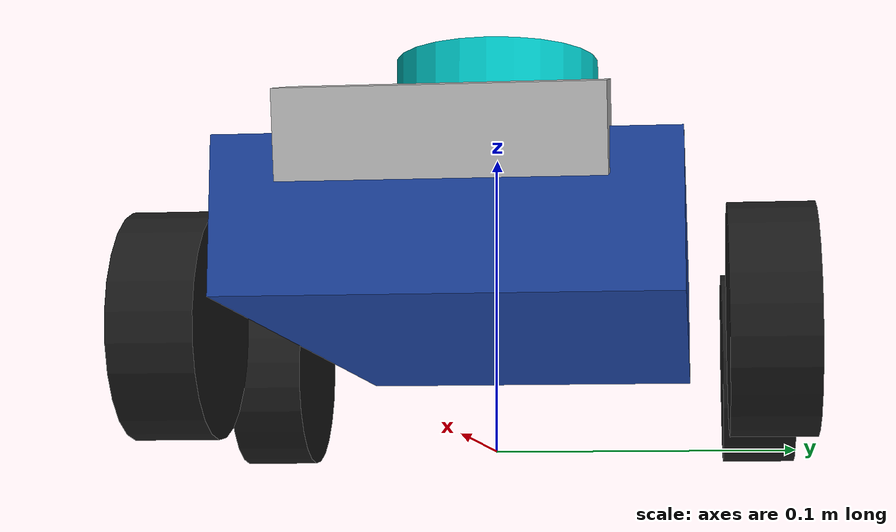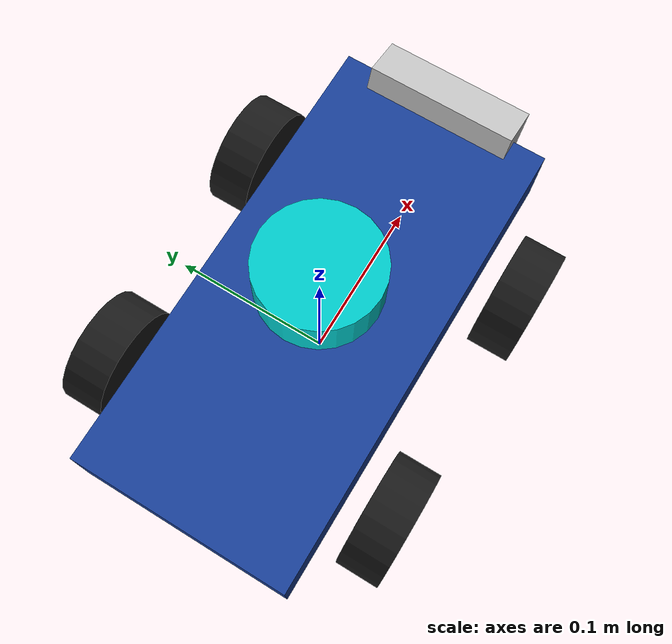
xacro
<?xml version="1.0"?>
<robot name="ackermann_car" xmlns:xacro="http://www.ros.org/wiki/xacro">

  <!-- ==================== PARAMETERS ==================== -->
  <xacro:property name="wheelbase" value="0.15"/>
  <xacro:property name="track_width" value="0.18"/>
  <xacro:property name="wheel_radius" value="0.035"/>
  <xacro:property name="wheel_width" value="0.026"/>
  <xacro:property name="chassis_length" value="0.28"/>
  <xacro:property name="chassis_width" value="0.13"/>
  <xacro:property name="chassis_height" value="0.045"/>
  <xacro:property name="chassis_mass" value="1.8"/>
  <xacro:property name="wheel_mass" value="0.1"/>
  <xacro:property name="max_steer" value="0.785398"/> <!-- 45 degrees -->

  <!-- ==================== BASE FOOTPRINT ==================== -->
  <link name="base_footprint"/>

  <joint name="base_footprint_joint" type="fixed">
    <parent link="base_footprint"/>
    <child link="base_link"/>
    <origin xyz="0 0 ${wheel_radius}" rpy="0 0 0"/>
  </joint>

  <!-- ==================== BASE LINK (CHASSIS) ==================== -->
  <link name="base_link">
    <visual>
      <origin xyz="0 0 ${chassis_height/2}" rpy="0 0 0"/>
      <geometry>
        <box size="${chassis_length} ${chassis_width} ${chassis_height}"/>
      </geometry>
      <material name="dark_blue">
        <color rgba="0.1 0.25 0.6 1.0"/>
      </material>
    </visual>
    <collision>
      <origin xyz="0 0 ${chassis_height/2}" rpy="0 0 0"/>
      <geometry>
        <box size="${chassis_length} ${chassis_width} ${chassis_height}"/>
      </geometry>
    </collision>
    <inertial>
      <origin xyz="0 0 ${chassis_height/2}" rpy="0 0 0"/>
      <mass value="${chassis_mass}"/>
      <inertia
        ixx="${(1/12) * chassis_mass * (chassis_width*chassis_width + chassis_height*chassis_height)}"
        ixy="0" ixz="0"
        iyy="${(1/12) * chassis_mass * (chassis_length*chassis_length + chassis_height*chassis_height)}"
        iyz="0"
        izz="${(1/12) * chassis_mass * (chassis_length*chassis_length + chassis_width*chassis_width)}"/>
    </inertial>
  </link>

  <!-- ==================== FRONT STEERING JOINTS & LINKS ==================== -->
  <!-- FRONT LEFT STEERING -->
  <link name="front_left_wheel_steering_link">
    <inertial>
      <origin xyz="0 0 0" rpy="0 0 0"/>
      <mass value="0.05"/>
      <inertia ixx="0.0001" ixy="0" ixz="0" iyy="0.0001" iyz="0" izz="0.0001"/>
    </inertial>
  </link>

  <joint name="front_left_wheel_steering_joint" type="revolute">
    <parent link="base_link"/>
    <child link="front_left_wheel_steering_link"/>
    <origin xyz="${wheelbase/2} ${track_width/2} 0" rpy="0 0 0"/>
    <axis xyz="0 0 1"/>
    <limit lower="-${max_steer}" upper="${max_steer}" effort="20.0" velocity="3.0"/>
  </joint>

  <!-- FRONT RIGHT STEERING -->
  <link name="front_right_wheel_steering_link">
    <inertial>
      <origin xyz="0 0 0" rpy="0 0 0"/>
      <mass value="0.05"/>
      <inertia ixx="0.0001" ixy="0" ixz="0" iyy="0.0001" iyz="0" izz="0.0001"/>
    </inertial>
  </link>

  <joint name="front_right_wheel_steering_joint" type="revolute">
    <parent link="base_link"/>
    <child link="front_right_wheel_steering_link"/>
    <origin xyz="${wheelbase/2} -${track_width/2} 0" rpy="0 0 0"/>
    <axis xyz="0 0 1"/>
    <limit lower="-${max_steer}" upper="${max_steer}" effort="20.0" velocity="3.0"/>
  </joint>

  <!-- ==================== WHEEL MACRO ==================== -->
  <xacro:macro name="wheel" params="name parent_link origin_xyz">
    <link name="${name}">
      <visual>
        <origin xyz="0 0 0" rpy="1.570796 0 0"/>
        <geometry>
          <cylinder radius="${wheel_radius}" length="${wheel_width}"/>
        </geometry>
        <material name="black">
          <color rgba="0.1 0.1 0.1 1.0"/>
        </material>
      </visual>
      <collision>
        <origin xyz="0 0 0" rpy="1.570796 0 0"/>
        <geometry>
          <cylinder radius="${wheel_radius}" length="${wheel_width}"/>
        </geometry>
      </collision>
      <inertial>
        <origin xyz="0 0 0" rpy="1.570796 0 0"/>
        <mass value="${wheel_mass}"/>
        <inertia
          ixx="${(1/12) * wheel_mass * (3*wheel_radius*wheel_radius + wheel_width*wheel_width)}"
          ixy="0" ixz="0"
          iyy="${(1/12) * wheel_mass * (3*wheel_radius*wheel_radius + wheel_width*wheel_width)}"
          iyz="0"
          izz="${(1/2) * wheel_mass * wheel_radius*wheel_radius}"/>
      </inertial>
    </link>

    <joint name="${name}_joint" type="continuous">
      <parent link="${parent_link}"/>
      <child link="${name}"/>
      <origin xyz="${origin_xyz}" rpy="0 0 0"/>
      <axis xyz="0 1 0"/>
    </joint>

    <gazebo reference="${name}">
      <material>Gazebo/DarkGrey</material>
      <collision>
        <surface>
          <friction>
            <ode>
              <mu>1.2</mu>
              <mu2>1.2</mu2>
              <fdir1>1 0 0</fdir1>
            </ode>
          </friction>
        </surface>
      </collision>
    </gazebo>
  </xacro:macro>

  <!-- ==================== INSTANTIATE 4 WHEELS ==================== -->
  <xacro:wheel name="front_left_wheel" parent_link="front_left_wheel_steering_link" origin_xyz="0 0 0"/>
  <xacro:wheel name="front_right_wheel" parent_link="front_right_wheel_steering_link" origin_xyz="0 0 0"/>
  <xacro:wheel name="rear_left_wheel" parent_link="base_link" origin_xyz="-${wheelbase/2} ${track_width/2} 0"/>
  <xacro:wheel name="rear_right_wheel" parent_link="base_link" origin_xyz="-${wheelbase/2} -${track_width/2} 0"/>

  <!-- ==================== 2D LIDAR (270 DEGREE) ==================== -->
  <link name="lidar_link">
    <visual>
      <origin xyz="0 0 0" rpy="0 0 0"/>
      <geometry>
        <cylinder radius="0.035" length="0.03"/>
      </geometry>
      <material name="cyan">
        <color rgba="0.0 0.8 0.8 1.0"/>
      </material>
    </visual>
    <collision>
      <origin xyz="0 0 0" rpy="0 0 0"/>
      <geometry>
        <cylinder radius="0.035" length="0.03"/>
      </geometry>
    </collision>
    <inertial>
      <mass value="0.12"/>
      <inertia ixx="0.0001" ixy="0" ixz="0" iyy="0.0001" iyz="0" izz="0.0001"/>
    </inertial>
  </link>

  <joint name="lidar_joint" type="fixed">
    <parent link="base_link"/>
    <child link="lidar_link"/>
    <!-- LiDAR şasinin tam merkezinde (köşegenlerin kesişim noktası) -->
    <origin xyz="0 0 ${chassis_height + 0.04}" rpy="0 0 0"/>
  </joint>

  <!-- ==================== INTEL REALSENSE CAMERA ==================== -->
  <link name="camera_link">
    <visual>
      <origin xyz="0 0 0" rpy="0 0 0"/>
      <geometry>
        <box size="0.025 0.09 0.025"/>
      </geometry>
      <material name="silver">
        <color rgba="0.75 0.75 0.75 1.0"/>
      </material>
    </visual>
    <collision>
      <origin xyz="0 0 0" rpy="0 0 0"/>
      <geometry>
        <box size="0.025 0.09 0.025"/>
      </geometry>
    </collision>
    <inertial>
      <mass value="0.07"/>
      <inertia ixx="0.00005" ixy="0" ixz="0" iyy="0.00005" iyz="0" izz="0.00005"/>
    </inertial>
  </link>

  <!-- Mount camera at front bumper, tilted 15 deg (0.2618 rad) downwards for low obstacle detection -->
  <joint name="camera_joint" type="fixed">
    <parent link="base_link"/>
    <child link="camera_link"/>
    <origin xyz="${chassis_length/2} 0 ${chassis_height}" rpy="0 0.2618 0"/>
  </joint>

  <link name="camera_depth_optical_frame"/>
  <joint name="camera_optical_joint" type="fixed">
    <parent link="camera_link"/>
    <child link="camera_depth_optical_frame"/>
    <origin xyz="0 0 0" rpy="-1.570796 0 -1.570796"/>
  </joint>

  <!-- ==================== GAZEBO SIM SENSORS ==================== -->
  <gazebo reference="lidar_link">
    <material>Gazebo/Turquoise</material>
    <sensor name="lidar_2d" type="gpu_lidar">
      <pose relative_to="lidar_link">0 0 0 0 0 0</pose>
      <topic>/scan</topic>
      <update_rate>10</update_rate>
      <ignition_frame_id>lidar_link</ignition_frame_id>
      <ray>
        <scan>
        <horizontal>
            <!-- Hokuyo UTM-30LX: 270 degrees (-135 deg to +135 deg), 1081 samples (M-2 düzeltmesi) -->
            <samples>1081</samples>
            <resolution>1</resolution>
            <min_angle>-2.35619</min_angle>
            <max_angle>2.35619</max_angle>   <!-- +135° = 270° toplam -->
          </horizontal>
        </scan>
        <range>
          <min>0.06</min>
          <max>5.6</max>
          <resolution>0.001</resolution>
        </range>
      </ray>
      <always_on>1</always_on>
      <visualize>true</visualize>
    </sensor>
  </gazebo>

  <gazebo reference="camera_link">
    <material>Gazebo/Grey</material>
    <sensor name="realsense" type="rgbd_camera">
      <pose relative_to="camera_link">0 0 0 0 0 0</pose>
      <topic>/camera</topic>
      <update_rate>15</update_rate>
      <ignition_frame_id>camera_depth_optical_frame</ignition_frame_id>
      <camera>
        <horizontal_fov>1.5184</horizontal_fov> <!-- 87 deg RealSense FOV -->
        <image>
          <width>640</width>
          <height>480</height>
          <format>R8G8B8</format>
        </image>
        <clip>
          <near>0.15</near>
          <far>6.0</far>
        </clip>
      </camera>
      <always_on>1</always_on>
      <visualize>true</visualize>
    </sensor>
  </gazebo>

  <!-- ==================== ACKERMANN STEERING SYSTEM ==================== -->
  <gazebo>
    <plugin
      filename="ignition-gazebo-ackermann-steering-system"
      name="ignition::gazebo::systems::AckermannSteering">
      <left_joint>front_left_wheel_joint</left_joint>
      <left_joint>rear_left_wheel_joint</left_joint>
      <right_joint>front_right_wheel_joint</right_joint>
      <right_joint>rear_right_wheel_joint</right_joint>
      <left_steering_joint>front_left_wheel_steering_joint</left_steering_joint>
      <right_steering_joint>front_right_wheel_steering_joint</right_steering_joint>
      <kingpin_width>${track_width}</kingpin_width>
      <steering_limit>${max_steer}</steering_limit>
      <wheel_base>${wheelbase}</wheel_base>
      <wheel_separation>${track_width}</wheel_separation>
      <wheel_radius>${wheel_radius}</wheel_radius>
      <min_velocity>-1.5</min_velocity>
      <max_velocity>1.5</max_velocity>
      <min_acceleration>-3.0</min_acceleration>
      <max_acceleration>3.0</max_acceleration>
      <topic>/cmd_vel</topic>
      <odom_topic>/odom_wheel</odom_topic>
      <tf_topic>/tf_wheel</tf_topic>
      <frame_id>odom</frame_id>
      <child_frame_id>base_footprint</child_frame_id>
      <odom_publish_frequency>30</odom_publish_frequency>
    </plugin>
  </gazebo>

</robot>
